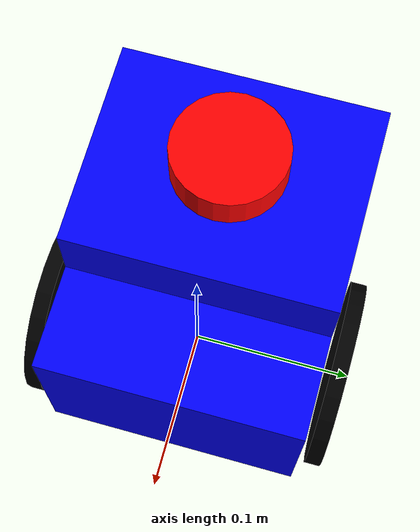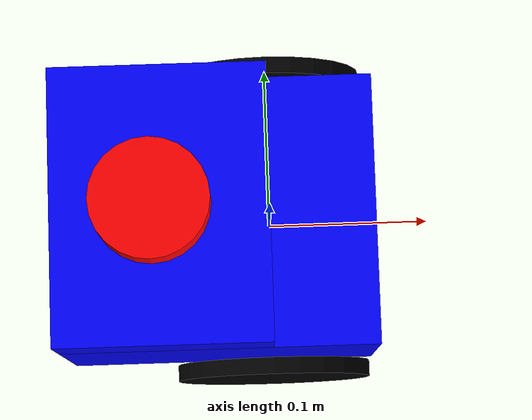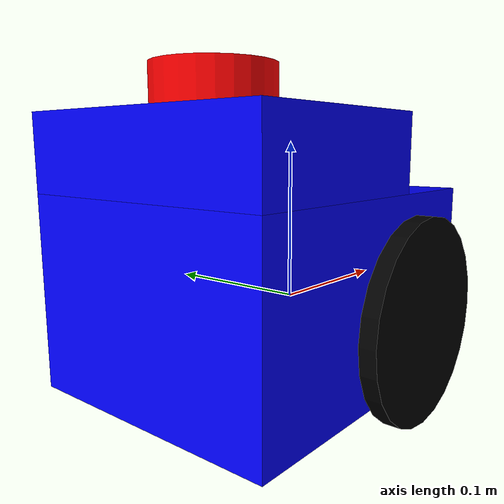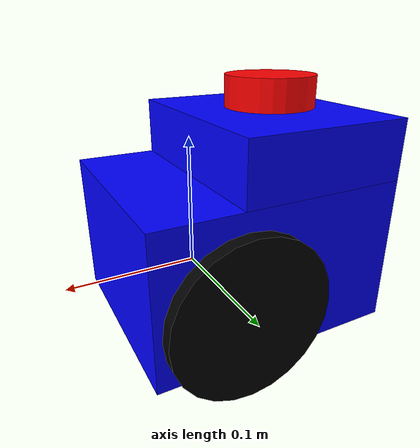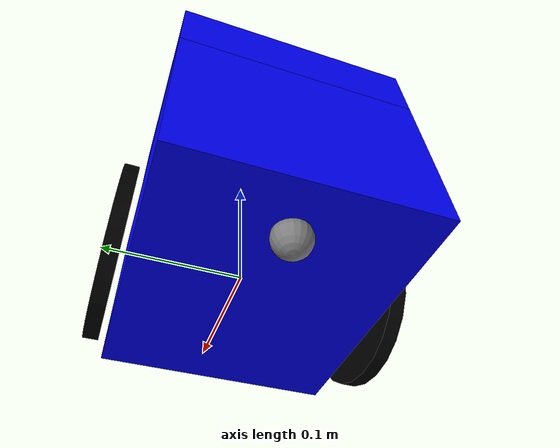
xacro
<?xml version="1.0"?>
<robot xmlns:xacro="http://www.ros.org/wiki/xacro" name="bungy">

  <!-- Parameters -->
  <xacro:arg name="use_ros2_control" default="false" />
  <xacro:arg name="use_sim_time" default="false" />

  <!-- Robot physical properties -->
  <xacro:property name="wheel_separation" value="0.184" />
  <xacro:property name="wheel_radius" value="0.06" />

  <xacro:property name="wheel_width" value="0.01" />

  <!-- Base link: lower body (bottom plate .. third plate) and the upper deck behind the axle
       (third plate .. top plate, carries the lidar) -->
  <link name="base_link">
    <visual>
      <origin xyz="-0.032 0 0.01375"/>
      <geometry>
        <box size="0.192 0.164 0.115"/>
      </geometry>
      <material name="blue">
        <color rgba="0.0 0.0 1.0 1.0"/>
      </material>
    </visual>
    <visual>
      <origin xyz="-0.064 0 0.09375"/>
      <geometry>
        <box size="0.128 0.164 0.045"/>
      </geometry>
      <material name="blue">
        <color rgba="0.0 0.0 1.0 1.0"/>
      </material>
    </visual>
    <collision>
      <origin xyz="-0.032 0 0.01375"/>
      <geometry>
        <box size="0.192 0.164 0.115"/>
      </geometry>
    </collision>
    <collision>
      <origin xyz="-0.064 0 0.09375"/>
      <geometry>
        <box size="0.128 0.164 0.045"/>
      </geometry>
    </collision>
    <inertial>
      <mass value="2.0"/>
      <inertia ixx="0.02" ixy="0.0" ixz="0.0" iyy="0.05" iyz="0.0" izz="0.06"/>
    </inertial>
  </link>

    <!-- Left wheel link -->
  <link name="left_wheel_link">
    <visual>
      <geometry>
        <cylinder radius="${wheel_radius}" length="${wheel_width}"/>
      </geometry>
      <material name="black">
        <color rgba="0.0 0.0 0.0 1.0"/>
      </material>
    </visual>
    <collision>
      <geometry>
        <cylinder radius="${wheel_radius}" length="${wheel_width}"/>
      </geometry>
    </collision>
    <inertial>
      <mass value="0.1"/>
      <inertia ixx="0.001" ixy="0.0" ixz="0.0" iyy="0.001" iyz="0.0" izz="0.001"/>
    </inertial>
  </link>

  <!-- Right wheel link -->
  <link name="right_wheel_link">
    <visual>
      <geometry>
        <cylinder radius="${wheel_radius}" length="${wheel_width}"/>
      </geometry>
      <material name="black">
        <color rgba="0.0 0.0 0.0 1.0"/>
      </material>
    </visual>
    <collision>
      <geometry>
        <cylinder radius="${wheel_radius}" length="${wheel_width}"/>
      </geometry>
    </collision>
    <inertial>
      <mass value="0.1"/>
      <inertia ixx="0.001" ixy="0.0" ixz="0.0" iyy="0.001" iyz="0.0" izz="0.001"/>
    </inertial>
  </link>

  <!-- Left wheel joint -->
  <joint name="left_wheel_joint" type="continuous">
    <parent link="base_link"/>
    <child link="left_wheel_link"/>
    <origin xyz="0.0 ${wheel_separation/2} 0.0" rpy="-${pi/2} 0 0"/>
    <axis xyz="0 0 1"/>
  </joint>

  <!-- Right wheel joint -->
  <joint name="right_wheel_joint" type="continuous">
    <parent link="base_link"/>
    <child link="right_wheel_link"/>
    <origin xyz="0.0 -${wheel_separation/2} 0.0" rpy="-${pi/2} 0 0"/>
    <axis xyz="0 0 1"/>
  </joint>

  <!-- LIDAR Link (RPLIDAR A1). laser_link sits in the scan plane; the visual is the rotor
       (diameter 0.07 m, from 0.018 m below to 0.006 m above the scan plane) -->
  <link name="laser_link">
    <visual>
      <origin xyz="0 0 -0.006"/>
      <geometry>
        <cylinder radius="0.035" length="0.024"/>
      </geometry>
      <material name="red">
        <color rgba="1.0 0.0 0.0 1.0"/>
      </material>
    </visual>
    <collision>
      <origin xyz="0 0 -0.006"/>
      <geometry>
        <cylinder radius="0.035" length="0.024"/>
      </geometry>
    </collision>
    <inertial>
      <mass value="0.125"/>
      <inertia ixx="0.001" ixy="0.0" ixz="0.0" iyy="0.001" iyz="0.0" izz="0.001"/>
    </inertial>
  </link>

  <!-- LIDAR Joint: rotor centre 0.068875 m behind the axle (STL), scan plane 0.195 m above the
       floor (measured) = 0.135 m above the axle -->
  <joint name="laser_joint" type="fixed">
    <parent link="base_link"/>
    <child link="laser_link"/>
    <origin xyz="-0.068875 0.0 0.135" rpy="0 0 0"/>
  </joint>

  <!-- IMU Link -->
  <link name="imu_link">
    <visual>
      <geometry>
        <box size="0.02 0.02 0.01"/>
      </geometry>
      <material name="green">
        <color rgba="0.0 1.0 0.0 1.0"/>
      </material>
    </visual>
    <collision>
      <geometry>
        <box size="0.02 0.02 0.01"/>
      </geometry>
    </collision>
    <inertial>
      <mass value="0.01"/>
      <inertia ixx="0.0001" ixy="0.0" ixz="0.0" iyy="0.0001" iyz="0.0" izz="0.0001"/>
    </inertial>
  </link>

  <!-- IMU Joint: BNO055 on the second plate, in the holder near the centre that is turned by 90 deg
       (STL), z up and x forward. Only the IMU yaw is fused, so the position is not critical. -->
  <joint name="imu_joint" type="fixed">
    <parent link="base_link"/>
    <child link="imu_link"/>
    <origin xyz="-0.008 0.008 0.034" rpy="0 0 0"/>
  </joint>

  <!-- Caster: Roomba swivel wheel (diameter 0.025 m) 0.091 m behind the axle, modelled as a sphere
       touching the floor; fixed, so a simulator must give it zero friction -->
  <link name="caster_link">
    <visual>
      <geometry>
        <sphere radius="0.0125"/>
      </geometry>
      <material name="grey">
        <color rgba="0.5 0.5 0.5 1.0"/>
      </material>
    </visual>
    <collision>
      <geometry>
        <sphere radius="0.0125"/>
      </geometry>
    </collision>
    <inertial>
      <mass value="0.02"/>
      <inertia ixx="0.000001" ixy="0.0" ixz="0.0" iyy="0.000001" iyz="0.0" izz="0.000001"/>
    </inertial>
  </link>

  <joint name="caster_joint" type="fixed">
    <parent link="base_link"/>
    <child link="caster_link"/>
    <origin xyz="-0.091 0.0 -0.0475" rpy="0 0 0"/>
  </joint>

  <!-- Conditional ros2_control inclusion -->
  <xacro:if value="$(arg use_ros2_control)">
    <xacro:include filename="$(find bungy_description)/urdf/bungy_robot.ros2_control.xacro" />
  </xacro:if>

</robot>
